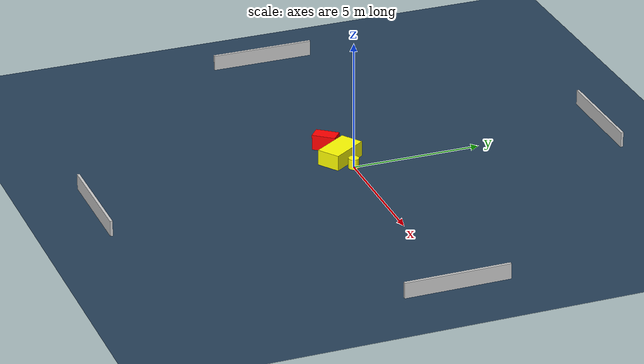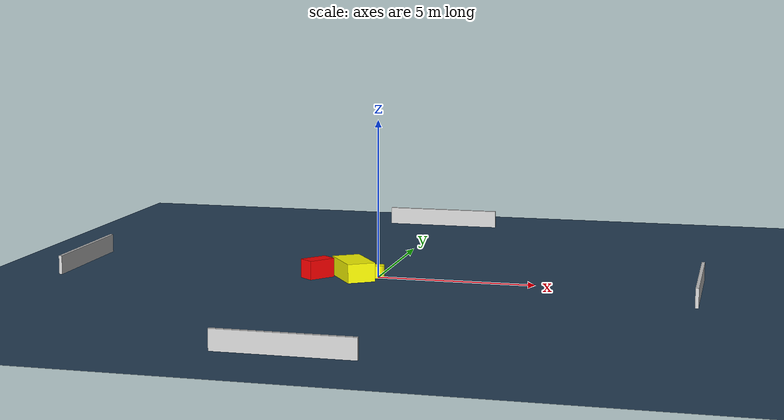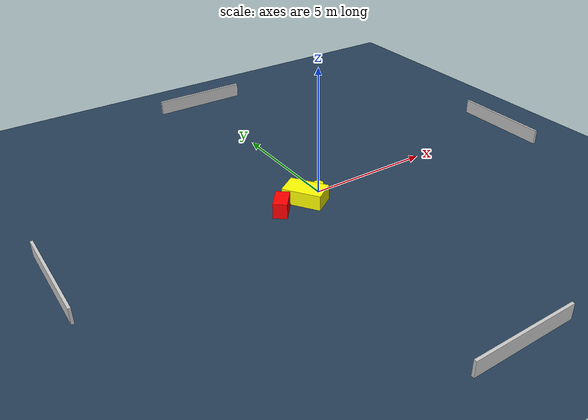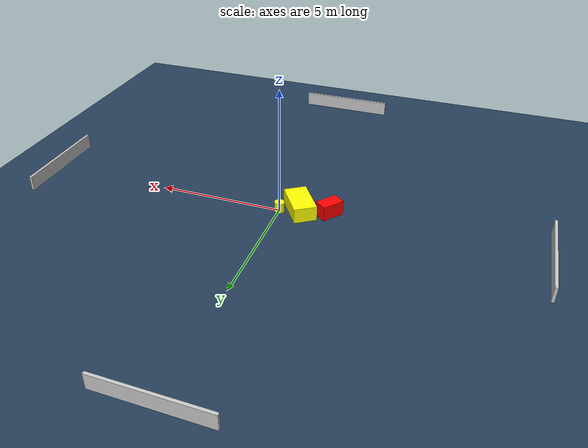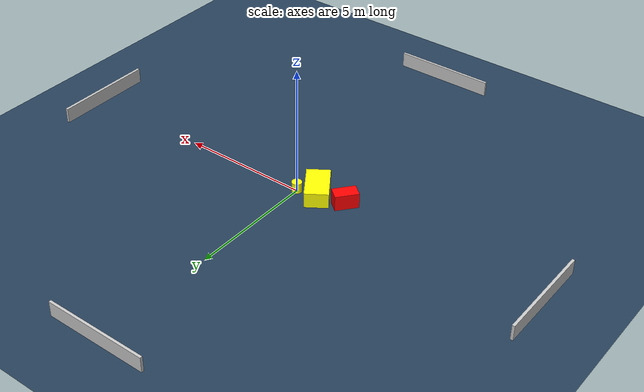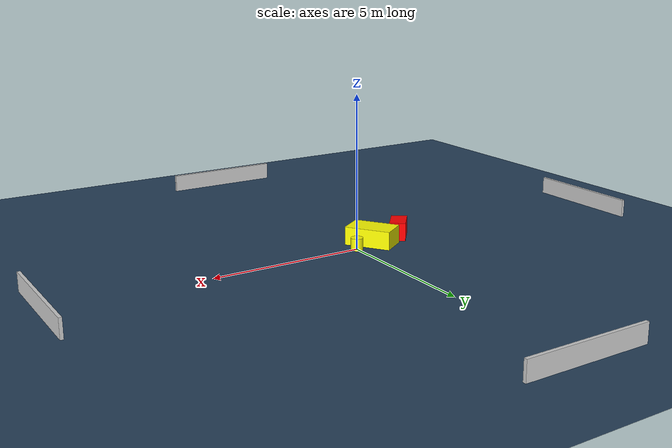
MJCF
<?xml version="1.0" ?>
<mujoco model="generated_environment">
  <option timestep="0.01" integrator="RK4" cone="elliptic"/>
  <default>
    <geom density="1"/>
  </default>
  <asset>
    <texture builtin="gradient" height="3072" name="skybox" rgb1="0.3 0.5 0.7" rgb2="0 0 0" type="skybox" width="512"/>
    <texture builtin="checker" height="300" name="groundplane" rgb1="0.2 0.3 0.4" rgb2="0.1 0.2 0.3" type="2d" width="300"/>
    <material name="groundplane" reflectance="0.2" texrepeat="5 5" texture="groundplane"/>
  </asset>
  <worldbody>
    <light dir="0 0 -1" directional="true" pos="0 0 1.5"/>
    <geom condim="3" friction="0.5 0.005 0.001" material="groundplane" name="floor" pos="0 0 0" size="0 0 0.05" type="plane"/>
    <body name="walls">
      <geom name="wall_1" condim="4" pos="-10.0 0.0 0.3" rgba="0.800000011920929 0.800000011920929 0.800000011920929 1.0" size="0.05 2.0 0.3" type="box"/>
      <geom name="wall_2" condim="4" pos="10.0 0.0 0.3" rgba="0.800000011920929 0.800000011920929 0.800000011920929 1.0" size="0.05 2.0 0.3" type="box"/>
      <geom name="wall_3" condim="4" pos="0.0 -10.0 0.3" rgba="0.800000011920929 0.800000011920929 0.800000011920929 1.0" size="2.0 0.05 0.3" type="box"/>
      <geom name="wall_4" condim="4" pos="0.0 10.0 0.3" rgba="0.800000011920929 0.800000011920929 0.800000011920929 1.0" size="2.0 0.05 0.3" type="box"/>
    </body>
    <body name="robot">
      <joint name="joint_x" type="slide" pos="0 0 0" axis="1 0 0"/>
      <joint name="joint_y" type="slide" pos="0 0 0" axis="0 1 0"/>
      <geom name="robot" type="cylinder" pos="0.0 0.0 0.2" size="0.2 0.2 0.0" mass="5.0" friction="1.0 0.005 0.0001" condim="4" rgba="1.0 1.0 0.0 1.0"/>
    </body>
    <body name="obstacle_1_movable">
      <geom name="obstacle_1_movable" condim="4" pos="-0.7499076230207351 -0.24713097977755868 0.3" euler="0 0 303.938262908581" friction="0.0 0.005 0.001" rgba="1.0 1.0 0.0 1.0" size="0.7668793947809924 0.4505460388712925 0.3" type="box" mass="0.1"/>
      <joint type="free"/>
    </body>
    <body name="obstacle_2_static">
      <geom name="obstacle_2_static" condim="4" pos="-1.8899539921051987 -0.39266874977109517 0.3" euler="0 0 230.96123631616945" friction="0.0 0.005 0.001" rgba="1.0 0.0 0.0 1.0" size="0.45322053452256233 0.26675580821570855 0.3" type="box"/>
    </body>
  </worldbody>
  <actuator>
    <motor name="actuator_x" joint="joint_x" gear="1" ctrlrange="-1 1"/>
    <motor name="actuator_y" joint="joint_y" gear="1" ctrlrange="-1 1"/>
  </actuator>
</mujoco>
